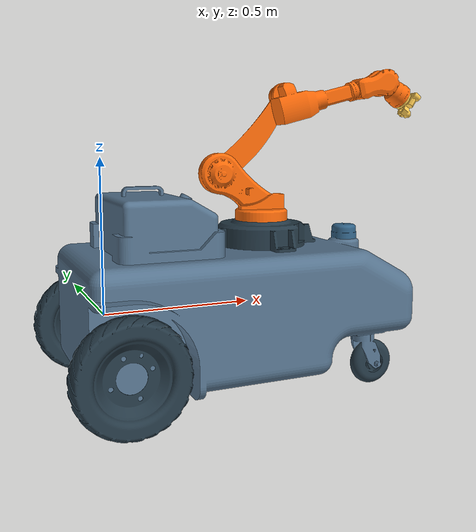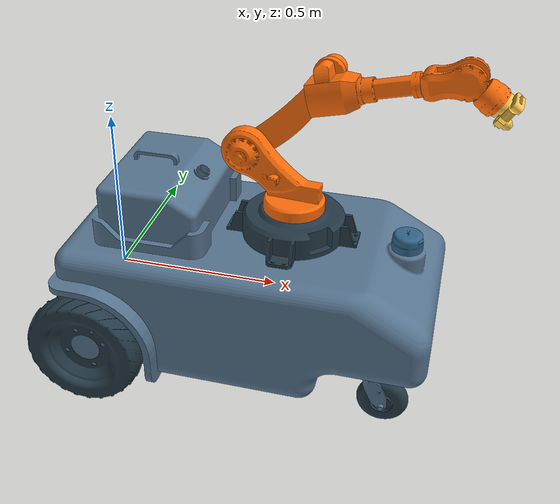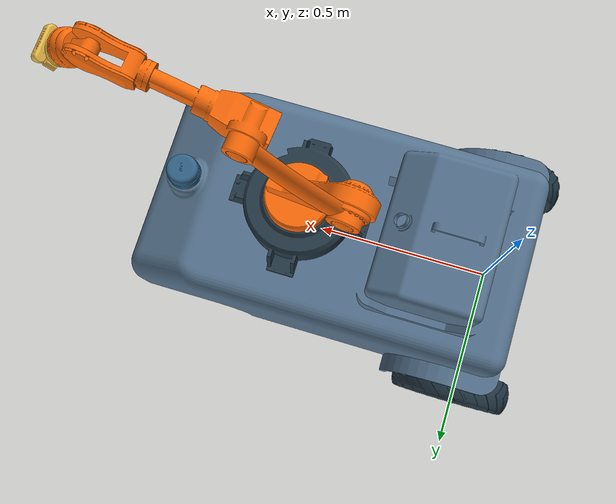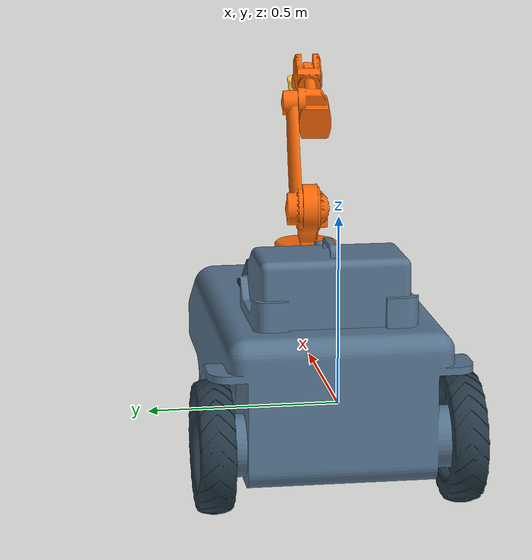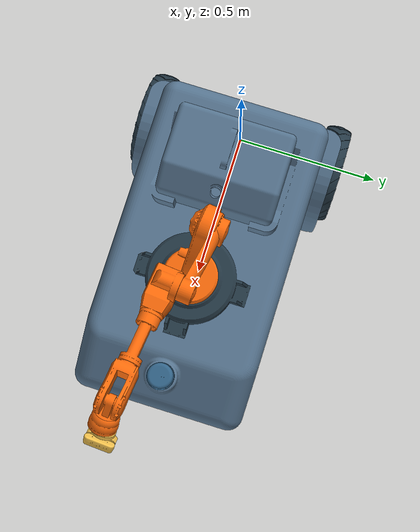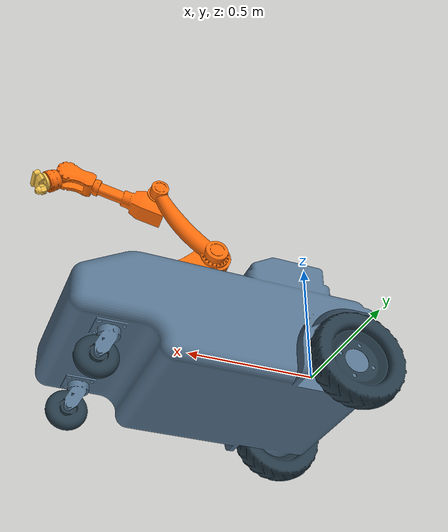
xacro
<?xml version="1.0"?>
<robot xmlns:xacro="http://www.ros.org/wiki/xacro" name="robot_description">

  <xacro:include filename="agrobot_v2_core.xacro" />
  <xacro:include filename="materials.xacro" />
  <xacro:include filename="depth_camera.gazebo.xacro" />
  <xacro:include filename="gazebo_materials.xacro" />
  <xacro:include filename="self-collision.gazebo.xacro" />
  <xacro:include filename="ros2_control.xacro" />
  <xacro:include filename="lidar.xacro" />
</robot>

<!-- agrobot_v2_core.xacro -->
<robot xmlns:xacro="http://www.ros.org/wiki/xacro" name="robot_description">

  <link name="base_footprint" />

  <joint name="base_footprint_joint" type="fixed">
    <parent link="base_footprint" />
    <child link="base_link" />
    <origin xyz="0 0 0" rpy="0 0 0" />
  </joint>

  <link name="base_link">
    <inertial>
      <origin
        xyz="0.408727 1.1066E-07 0.0086049"
        rpy="0 0 0" />
      <mass
        value="234.66" />
      <inertia
        ixx="9.5676"
        ixy="-1.0199E-05"
        ixz="-0.80343"
        iyy="23.224"
        iyz="-2.3006E-06"
        izz="27.142" />
    </inertial>
    <visual>
      <origin
        xyz="0.4505 0 0"
        rpy="0 0 0" />
      <geometry>
        <mesh
          filename="package://robot_description/meshes/base_link.STL" />
      </geometry>
      <material name="slate_blue" />
    </visual>
    <collision>
      <origin
        xyz="0.4505 0 0"
        rpy="0 0 0" />
      <geometry>
        <mesh
          filename="package://robot_description/meshes/base_link.STL" />
      </geometry>
    </collision>
  </link>

  <link name="lidar_link">
    <inertial>
      <origin
        xyz="-0.0028178 -0.00029956 0.023158"
        rpy="0 0 0" />
      <mass
        value="0.28578" />
      <inertia
        ixx="0.00019613"
        ixy="1.0228E-06"
        ixz="5.4025E-06"
        iyy="0.00018721"
        iyz="6.1195E-07"
        izz="0.00027358" />
    </inertial>
    <visual>
      <origin
        xyz="0 0 0"
        rpy="0 0 0" />
      <geometry>
        <mesh
          filename="package://robot_description/meshes/lidar_link.STL" />
      </geometry>
      <material name="deep_ocean_blue" />
    </visual>
    <collision>
      <origin
        xyz="0 0 0"
        rpy="0 0 0" />
      <geometry>
        <mesh
          filename="package://robot_description/meshes/lidar_link.STL" />
      </geometry>
    </collision>
  </link>

  <joint name="lidar_joint"
    type="fixed">
    <origin
      xyz="0.894 0 0.2"
      rpy="0 0 0" />
    <parent
      link="base_link" />
    <child
      link="lidar_link" />
    <axis
      xyz="0 0 0" />
  </joint>

  <link name="right_wheel_link">
    <inertial>
      <origin
        xyz="0.00022467 -0.00049986 0.0036269"
        rpy="0 0 0" />
      <mass
        value="5.5356" />
      <inertia
        ixx="0.057208"
        ixy="-3.1261E-06"
        ixz="5.3496E-10"
        iyy="0.057214"
        iyz="2.2256E-09"
        izz="0.10823" />
    </inertial>
    <visual>
      <origin
        xyz="0 0 0"
        rpy="0 0 0" />
      <geometry>
        <mesh
          filename="package://robot_description/meshes/right_wheel_link.STL" />
      </geometry>
      <material name="dark_teal" />
    </visual>
    <collision>
      <origin
        xyz="0 0 0"
        rpy="0 0 0" />
      <geometry>
        <mesh
          filename="package://robot_description/meshes/right_wheel_link.STL" />
      </geometry>
    </collision>
  </link>

  <joint name="right_wheel_joint"
    type="continuous">
    <origin
      xyz="0 -0.331 -0.1041"
      rpy="-1.5708 0 0" />
    <parent
      link="base_link" />
    <child
      link="right_wheel_link" />
    <axis
      xyz="0 0 1" />
    <limit
      effort="500"
      velocity="20" />
    <dynamics
      damping="0.1"
      friction="0.1" />
  </joint>

  <link name="left_wheel_link">
    <inertial>
      <origin
        xyz="0.00027874 -0.00047189 0.0016269"
        rpy="0 0 0" />
      <mass
        value="5.5356" />
      <inertia
        ixx="0.057209"
        ixy="-3.6667E-06"
        ixz="-1.0563E-08"
        iyy="0.057213"
        iyz="5.5206E-09"
        izz="0.10823" />
    </inertial>
    <visual>
      <origin
        xyz="0 0 0"
        rpy="0 0 0" />
      <geometry>
        <mesh
          filename="package://robot_description/meshes/left_wheel_link.STL" />
      </geometry>
      <material name="dark_teal" />
    </visual>
    <collision>
      <origin
        xyz="0 0 0"
        rpy="0 0 0" />
      <geometry>
        <mesh
          filename="package://robot_description/meshes/left_wheel_link.STL" />
      </geometry>
    </collision>
  </link>

  <joint name="left_wheel_joint"
    type="continuous">
    <origin
      xyz="-0.00006 0.331 -0.10407"
      rpy="-1.5708 0 0" />
    <parent
      link="base_link" />
    <child
      link="left_wheel_link" />
    <axis
      xyz="0 0 1" />
    <limit
      effort="500"
      velocity="20" />
    <dynamics
      damping="0.1"
      friction="0.1" />
  </joint>

  <link name="castor_l_swivel_link">
    <inertial>
      <origin
        xyz="0.0076563 -5.1505E-05 -0.032982"
        rpy="0 0 0" />
      <mass
        value="1.3179" />
      <inertia
        ixx="0.0006576"
        ixy="8.0971E-11"
        ixz="0.00010963"
        iyy="0.00079106"
        iyz="-5.8606E-11"
        izz="0.0008082" />
    </inertial>
    <visual>
      <origin
        xyz="0 0 0"
        rpy="0 0 0" />
      <geometry>
        <mesh
          filename="package://robot_description/meshes/castor_l_swivel_link.STL" />
      </geometry>
      <material name="slate_blue" />
    </visual>
    <collision>
      <origin
        xyz="0 0 0"
        rpy="0 0 0" />
      <geometry>
        <mesh
          filename="package://robot_description/meshes/castor_l_swivel_link.STL" />
      </geometry>
    </collision>
  </link>

  <joint name="castor_l_swivel_joint"
    type="continuous">
    <origin
      xyz="0.8485 0.2 -0.10453"
      rpy="0 0 0" />
    <parent
      link="base_link" />
    <child
      link="castor_l_swivel_link" />
    <axis
      xyz="0 0 -1" />
    <limit
      effort="10"
      velocity="10" />
    <dynamics
      damping="0.001"
      friction="0.001" />
  </joint>

  <link name="castor_l_wheel_link">
    <inertial>
      <origin
        xyz="-3.6082E-16 0 0.0305"
        rpy="0 0 0" />
      <mass
        value="5.3698" />
      <inertia
        ixx="0.0086725"
        ixy="-2.062E-19"
        ixz="8.5365E-19"
        iyy="0.0086725"
        iyz="1.1689E-19"
        izz="0.015544" />
    </inertial>
    <visual>
      <origin
        xyz="0 0 0"
        rpy="0 0 0" />
      <geometry>
        <mesh
          filename="package://robot_description/meshes/castor_l_wheel_link.STL" />
      </geometry>
      <material name="dark_teal" />
    </visual>
    <collision>
      <origin
        xyz="0 0 0"
        rpy="0 0 0" />
      <geometry>
        <mesh
          filename="package://robot_description/meshes/castor_l_wheel_link.STL" />
      </geometry>
    </collision>
  </link>

  <joint name="castor_l_wheel_joint"
    type="continuous">
    <origin
      xyz="0.034301 -0.0305 -0.1004"
      rpy="-1.5708 0 0" />
    <parent
      link="castor_l_swivel_link" />
    <child
      link="castor_l_wheel_link" />
    <axis
      xyz="0 0 -1" />
    <limit
      effort="10"
      velocity="10" />
    <dynamics
      damping="0.001"
      friction="0.001" />
  </joint>

  <link name="castor_r_swivel_link">
    <inertial>
      <origin
        xyz="0.0076563 -5.1505E-05 -0.032982"
        rpy="0 0 0" />
      <mass
        value="1.3179" />
      <inertia
        ixx="0.0006576"
        ixy="8.096E-11"
        ixz="0.00010963"
        iyy="0.00079106"
        iyz="-5.8613E-11"
        izz="0.0008082" />
    </inertial>
    <visual>
      <origin
        xyz="0 0 0"
        rpy="0 0 0" />
      <geometry>
        <mesh
          filename="package://robot_description/meshes/castor_r_swivel_link.STL" />
      </geometry>
      <material name="slate_blue" />
    </visual>
    <collision>
      <origin
        xyz="0 0 0"
        rpy="0 0 0" />
      <geometry>
        <mesh
          filename="package://robot_description/meshes/castor_r_swivel_link.STL" />
      </geometry>
    </collision>
  </link>

  <joint name="castor_r_swivel_joint"
    type="continuous">
    <origin
      xyz="0.8485 -0.2 -0.10453"
      rpy="0 0 0" />
    <parent
      link="base_link" />
    <child
      link="castor_r_swivel_link" />
    <axis
      xyz="0 0 -1" />
    <limit
      effort="10"
      velocity="10" />
    <dynamics
      damping="0.001"
      friction="0.001" />
  </joint>

  <link name="castor_r_wheel_link">
    <inertial>
      <origin
        xyz="-3.747E-16 -5.5511E-17 0.0305"
        rpy="0 0 0" />
      <mass
        value="5.3698" />
      <inertia
        ixx="0.0086725"
        ixy="1.4155E-19"
        ixz="9.1092E-19"
        iyy="0.0086725"
        iyz="9.8723E-20"
        izz="0.015544" />
    </inertial>
    <visual>
      <origin
        xyz="0 0 0"
        rpy="0 0 0" />
      <geometry>
        <mesh
          filename="package://robot_description/meshes/castor_r_wheel_link.STL" />
      </geometry>
      <material name="dark_teal" />
    </visual>
    <collision>
      <origin
        xyz="0 0 0"
        rpy="0 0 0" />
      <geometry>
        <mesh
          filename="package://robot_description/meshes/castor_r_wheel_link.STL" />
      </geometry>
    </collision>
  </link>

  <joint name="castor_r_wheel_joint"
    type="continuous">
    <origin
      xyz="0.034301 -0.0305 -0.1004"
      rpy="-1.5708 0 0" />
    <parent
      link="castor_r_swivel_link" />
    <child
      link="castor_r_wheel_link" />
    <axis
      xyz="0 0 -1" />
    <limit
      effort="10"
      velocity="10" />
    <dynamics
      damping="0.001"
      friction="0.001" />
  </joint>

  <link name="arm_base_link">
    <inertial>
      <origin
        xyz="-0.0014254 0.0012318 0.038724"
        rpy="0 0 0" />
      <mass
        value="5.7738" />
      <inertia
        ixx="0.036402"
        ixy="-0.00079994"
        ixz="4.1166E-05"
        iyy="0.036438"
        iyz="-3.4695E-05"
        izz="0.066455" />
    </inertial>
    <visual>
      <origin
        xyz="0 0 0"
        rpy="0 0 0" />
      <geometry>
        <mesh
          filename="package://robot_description/meshes/arm_base_link.STL" />
      </geometry>
      <material name="dark_teal" />
    </visual>
    <collision>
      <origin
        xyz="0 0 0"
        rpy="0 0 0" />
      <geometry>
        <mesh
          filename="package://robot_description/meshes/arm_base_link.STL" />
      </geometry>
    </collision>
  </link>

  <joint name="arm_mount_joint"
    type="fixed">
    <origin
      xyz="0.55574 0 0.19682"
      rpy="0 0 0" />
    <parent
      link="base_link" />
    <child
      link="arm_base_link" />
    <axis
      xyz="0 0 0" />
  </joint>

  <link name="base_yaw_link">
    <inertial>
      <origin
        xyz="-0.059184 0.0016136 0.084797"
        rpy="0 0 0" />
      <mass
        value="2.388" />
      <inertia
        ixx="0.012377"
        ixy="0.0005197"
        ixz="0.0094393"
        iyy="0.024644"
        iyz="-0.00032073"
        izz="0.016814" />
    </inertial>
    <visual>
      <origin
        xyz="0 0 0"
        rpy="0 0 0" />
      <geometry>
        <mesh
          filename="package://robot_description/meshes/base_yaw_link.STL" />
      </geometry>
      <material name="industrial_orange" />
    </visual>
    <collision>
      <origin
        xyz="0 0 0"
        rpy="0 0 0" />
      <geometry>
        <mesh
          filename="package://robot_description/meshes/base_yaw_link.STL" />
      </geometry>
    </collision>
  </link>

  <joint name="base_yaw_joint"
    type="revolute">
    <origin
      xyz="0 0 0.085"
      rpy="0 0 0" />
    <parent
      link="arm_base_link" />
    <child
      link="base_yaw_link" />
    <axis
      xyz="0 0 1" />
    <limit
      lower="-3.14"
      upper="3.14"
      effort="30"
      velocity="1.5" />
    <dynamics
      damping="0.1"
      friction="0.1" />
  </joint>

  <link name="shoulder_link">
    <inertial>
      <origin
        xyz="0.10938 -0.10526 0.026202"
        rpy="0 0 0" />
      <mass
        value="1.0438" />
      <inertia
        ixx="0.010591"
        ixy="0.008946"
        ixz="0.00081718"
        iyy="0.0088945"
        iyz="-0.00082862"
        izz="0.019033" />
    </inertial>
    <visual>
      <origin
        xyz="0 0 0"
        rpy="0 0 0" />
      <geometry>
        <mesh
          filename="package://robot_description/meshes/shoulder_link.STL" />
      </geometry>
      <material name="industrial_orange" />
    </visual>
    <collision>
      <origin
        xyz="0 0 0"
        rpy="0 0 0" />
      <geometry>
        <mesh
          filename="package://robot_description/meshes/shoulder_link.STL" />
      </geometry>
    </collision>
  </link>

  <joint name="shoulder_pitch_joint"
    type="revolute">
    <origin
      xyz="-0.14936 0.013835 0.16"
      rpy="-1.5708 0 0" />
    <parent
      link="base_yaw_link" />
    <child
      link="shoulder_link" />
    <axis
      xyz="0 0 -1" />
    <limit
      lower="-1.57"
      upper="1.57"
      effort="40"
      velocity="1" />
    <dynamics
      damping="0.1"
      friction="0.1" />
  </joint>

  <link name="elbow_link">
    <inertial>
      <origin
        xyz="0.11923 0.0095672 -0.058054"
        rpy="0 0 0" />
      <mass
        value="2.011" />
      <inertia
        ixx="0.0029441"
        ixy="0.0015223"
        ixz="0.00083258"
        iyy="0.0098705"
        iyz="-4.6292E-05"
        izz="0.010343" />
    </inertial>
    <visual>
      <origin
        xyz="0 0 0"
        rpy="0 0 0" />
      <geometry>
        <mesh
          filename="package://robot_description/meshes/elbow_link.STL" />
      </geometry>
      <material name="industrial_orange" />
    </visual>
    <collision>
      <origin
        xyz="0 0 0"
        rpy="0 0 0" />
      <geometry>
        <mesh
          filename="package://robot_description/meshes/elbow_link.STL" />
      </geometry>
    </collision>
  </link>

  <joint name="elbow_pitch_joint"
    type="revolute">
    <origin
      xyz="0.23355 -0.26144 -0.0015474"
      rpy="0 0 0" />
    <parent
      link="shoulder_link" />
    <child
      link="elbow_link" />
    <axis
      xyz="0 0 -1" />
    <limit
      lower="-1.57"
      upper="1.57"
      effort="25"
      velocity="1.5" />
    <dynamics
      damping="0.1"
      friction="0.1" />
  </joint>

  <link name="wrist_pitch_link">
    <inertial>
      <origin
        xyz="0.050187 0.033365 -0.0046487"
        rpy="0 0 0" />
      <mass
        value="0.35016" />
      <inertia
        ixx="0.0002907"
        ixy="-7.07E-05"
        ixz="1.0006E-05"
        iyy="0.00035003"
        iyz="6.5488E-06"
        izz="0.0003978" />
    </inertial>
    <visual>
      <origin
        xyz="0 0 0"
        rpy="0 0 0" />
      <geometry>
        <mesh
          filename="package://robot_description/meshes/wrist_pitch_link.STL" />
      </geometry>
      <material name="industrial_orange" />
    </visual>
    <collision>
      <origin
        xyz="0 0 0"
        rpy="0 0 0" />
      <geometry>
        <mesh
          filename="package://robot_description/meshes/wrist_pitch_link.STL" />
      </geometry>
    </collision>
  </link>

  <joint name="wrist_pitch_joint"
    type="revolute">
    <origin
      xyz="0.35465 -0.048027 -0.081056"
      rpy="0 0 0" />
    <parent
      link="elbow_link" />
    <child
      link="wrist_pitch_link" />
    <axis
      xyz="0 0 1" />
    <limit
      lower="-1.57"
      upper="1.57"
      effort="10"
      velocity="2" />
    <dynamics
      damping="0.1"
      friction="0.1" />
  </joint>

  <link name="wrist_roll_link">
    <inertial>
      <origin
        xyz="0.022162 0.011473 -0.0019139"
        rpy="0 0 0" />
      <mass
        value="0.16506" />
      <inertia
        ixx="8.3037E-05"
        ixy="1.1941E-06"
        ixz="-3.3771E-06"
        iyy="8.206E-05"
        iyz="-2.2439E-06"
        izz="3.7143E-05" />
    </inertial>
    <visual>
      <origin
        xyz="0 0 0"
        rpy="0 0 0" />
      <geometry>
        <mesh
          filename="package://robot_description/meshes/wrist_roll_link.STL" />
      </geometry>
      <material name="sandy_yellow" />
    </visual>
    <collision>
      <origin
        xyz="0 0 0"
        rpy="0 0 0" />
      <geometry>
        <mesh
          filename="package://robot_description/meshes/wrist_roll_link.STL" />
      </geometry>
    </collision>
  </link>

  <joint name="wrist_roll_joint"
    type="revolute">
    <origin
      xyz="0.081369 0.054095 0"
      rpy="0 0 0" />
    <parent
      link="wrist_pitch_link" />
    <child
      link="wrist_roll_link" />
    <axis
      xyz="1 0 0" />
    <limit
      lower="-3.14"
      upper="3.14"
      effort="10"
      velocity="2" />
    <dynamics
      damping="0.1"
      friction="0.1" />
  </joint>

  <link name="camera_link">
    <visual>
      <origin xyz="0 0 0" rpy="0 0 0" />
      <geometry>
        <box size="0.01 0.01 0.01" />
      </geometry>
      <material name="deep_ocean_blue" />
    </visual>
    <collision>
      <origin xyz="0 0 0" rpy="0 0 0" />
      <geometry>
        <box size="0.01 0.01 0.01" />
      </geometry>
    </collision>
    <inertial>
      <mass value="0.01" />
      <inertia ixx="1e-6" ixy="0" ixz="0" iyy="1e-6" iyz="0" izz="1e-6" />
    </inertial>
  </link>

  <joint name="camera_joint" type="fixed">
    <origin xyz="0.04 0.0 0" rpy="0 0 0" />
    <parent link="wrist_roll_link" />
    <child link="camera_link" />
  </joint>

  <link name="camera_depth_optical_frame" />

  <joint name="camera_optical_joint" type="fixed">
    <origin xyz="0 0 0" rpy="-1.5708 0 -1.5708" />
    <parent link="camera_link" />
    <child link="camera_depth_optical_frame" />
  </joint>

</robot>

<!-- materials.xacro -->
<robot xmlns:xacro="http://www.ros.org/wiki/xacro" name="robot_description">

  <material name="slate_blue">
    <color rgba="0.341 0.459 0.565 1.0" />
  </material>

  <material name="industrial_orange">
    <color rgba="1.0 0.423 0.039 1.0" />
  </material>

  <material name="dark_teal">
    <color rgba="0.147 0.226 0.276 1.0" />
  </material>

  <material name="deep_ocean_blue">
    <color rgba="0.200 0.396 0.541 1.0" />
  </material>

  <material name="sandy_yellow">
    <color rgba="0.976 0.780 0.310 1.0" />
  </material>

</robot>
